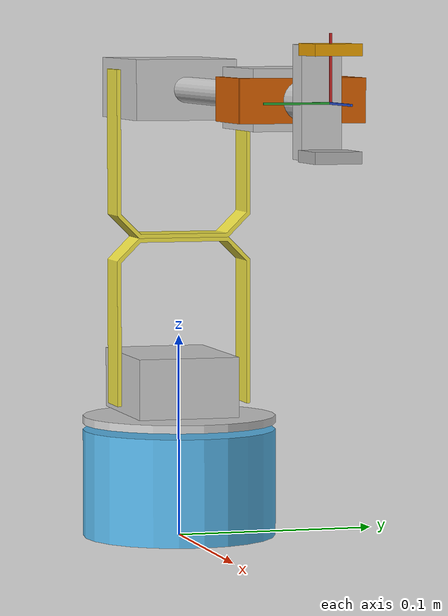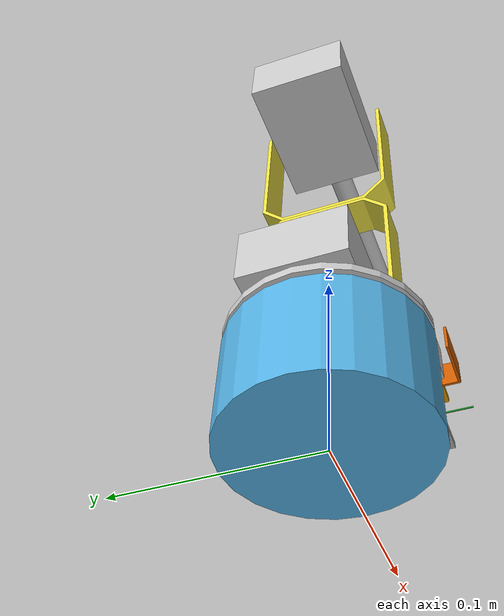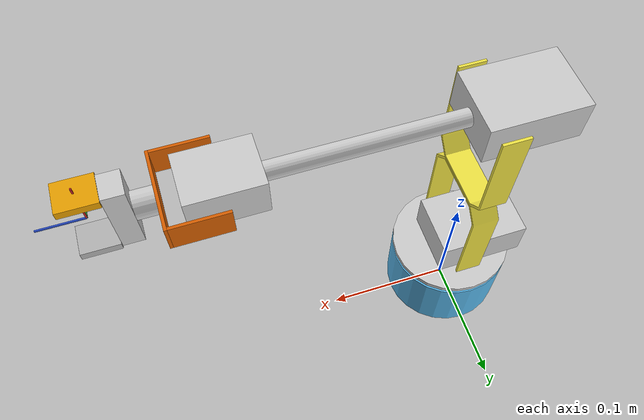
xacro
<?xml version="1.0"?>
<robot name="al5d" xmlns:xacro="http://ros.org/wiki/xacro">
    <xacro:include filename="$(find al5d_description)/urdf/transmissions.urdf.xacro"/>

    <xacro:property name="M_PI" value="3.14159"/>

    <xacro:property name="base_height" value="0.02" />
    <xacro:property name="base_radius" value="0.048" />
    <xacro:property name="upper_base_height" value="0.0702" />
    <xacro:property name="upper_arm_offset" value="0.006" />
    <xacro:property name="upper_arm_length" value="0.14605" />
    <xacro:property name="upper_arm_width" value="0.05" />
    <xacro:property name="lower_arm_length" value="0.187325" />
    <xacro:property name="lower_arm_width" value="0.035" />
    <xacro:property name="wrist_length" value="0.034" />
    <xacro:property name="gripper_length" value="${gripper_height + finger_length/2}" />
    <xacro:property name="wrist_width" value="0.025" />
    <xacro:property name="gripper_width" value="0.05" />
    <xacro:property name="gripper_height" value="0.021" />
    <xacro:property name="finger_length" value="0.04" />
    <xacro:property name="point" value="0.003" />

    <xacro:property name="axis_length" value="0.03" />
    <xacro:property name="axis_width" value="0.001" />

    <xacro:arg name="color" default="black" />

    <xacro:property name="inertia_block">
      <inertial>
        <mass value="0.3"/>
        <inertia ixx="0.001" ixy="0.0" ixz="0.0" iyy="0.001" iyz="0.0" izz="0.001"/>
      </inertial>
    </xacro:property>

    <link name="world"></link>
    <link name="base">
      <visual>
        <origin xyz="0 0 ${.0532/2}" rpy="0 0 0"/>
        <geometry>
          <cylinder length=".0532" radius="${base_radius}"/>
        </geometry>
      </visual>
      <collision>
        <origin xyz="0 0 ${.0532/2}" rpy="0 0 0"/>
        <geometry>
          <cylinder length=".0532" radius="${base_radius}"/>
        </geometry>
      </collision>
      <xacro:insert_block name="inertia_block" />
    </link>
    <link name="upper_base">
      <visual>
	      <origin xyz="0 0 .0582" rpy="0 0 0"/>
        <geometry>
          <cylinder length=".004" radius="${base_radius}"/>
        </geometry>
      </visual>
      <visual>
	      <origin xyz="-.01487 0 .0752" rpy="0 0 0"/>
        <geometry>
          <box size=".06985 .0508 .030"/>
        </geometry>
      </visual>
      <collision>
	      <origin xyz="0 0 .0582" rpy="0 0 0"/>
        <geometry>
          <cylinder length=".004" radius="${base_radius}"/>
        </geometry>
      </collision>
      <collision>
	      <origin xyz="-.01487 0 .0752" rpy="0 0 0"/>
        <geometry>
          <box size=".06985 .0508 .030"/>
        </geometry>
      </collision>
      <xacro:insert_block name="inertia_block" />
    </link>
    <link name="upper_arm">
      <visual>
        <geometry>
          <mesh filename="package://al5d_description/mesh/upper_arm/UpperArm - Bracket-1.STL"/>
        </geometry>
      </visual>
      <visual>
        <geometry>
          <mesh filename="package://al5d_description/mesh/upper_arm/UpperArm - Bracket-2.STL"/>
        </geometry>
      </visual>
      <collision>
        <origin xyz="${upper_arm_length/2} 0 0" rpy="0 0 0"/>
        <geometry>
          <box size=".02 .020 .068"/>
        </geometry>
      </collision>
      <collision>
        <origin xyz="${upper_arm_length/2} 0 .033" rpy="0 0 0"/>
        <geometry>
          <box size=".166 .020 .002"/>
        </geometry>
      </collision>
      <collision>
        <origin xyz="${upper_arm_length/2} 0 -.033" rpy="0 0 0"/>
        <geometry>
          <box size=".166 .020 .002"/>
        </geometry>
      </collision>
      <xacro:insert_block name="inertia_block" />
    </link>
    <link name="lower_arm">
      <visual>
        <origin xyz="${lower_arm_length/2} 0 0" rpy="0 ${3.14158/2} 0"/>
        <geometry>
          <cylinder length="${lower_arm_length}" radius=".00635"/>
        </geometry>
      </visual>
      <visual>
        <origin xyz="-.01982 0 0" rpy="0 0 0"/>
        <geometry>
          <box size=".06985 .030 .0508"/>
        </geometry>
      </visual>
      <visual>
        <origin xyz=".1759 0 0" rpy="0 0 0"/>
        <geometry>
          <box size=".0508 .0279 .0381"/>
        </geometry>
      </visual>

      <collision>
        <origin xyz="${lower_arm_length/2} 0 0" rpy="0 ${3.14158/2} 0"/>
        <geometry>
          <cylinder length="${lower_arm_length}" radius=".00635"/>
        </geometry>
      </collision>
      <collision>
        <origin xyz="-.01982 0 0" rpy="0 0 0"/>
        <geometry>
          <box size=".06985 .030 .0508"/>
        </geometry>
      </collision>
      <collision>
        <origin xyz=".1759 0 0" rpy="0 0 0"/>
        <geometry>
          <box size=".0508 .0279 .0381"/>
        </geometry>
      </collision>

      <xacro:insert_block name="inertia_block" />
    </link>
    <link name="wrist">
      <visual>
        <origin xyz=".026 0 0" rpy="0 0 0"/>
        <geometry>
          <box size=".002 .020 .05788"/>
        </geometry>
      </visual>
      <visual>
        <origin xyz="${.025-.0377/2} 0 ${.05788/2-.001}" rpy="0 0 0"/>
        <geometry>
          <box size="${.0377} .020 .002"/>
        </geometry>
      </visual>
      <visual>
        <origin xyz="${.025-.0377/2} 0 ${-.05788/2+.001}" rpy="0 0 0"/>
        <geometry>
          <box size="${.0377} .020 .002"/>
        </geometry>
      </visual>
      <collision>
        <origin xyz=".026 0 0" rpy="0 0 0"/>
        <geometry>
          <box size=".002 .020 .05788"/>
        </geometry>
      </collision>
      <collision>
        <origin xyz="${.025-.0377/2} 0 ${.05788/2-.001}" rpy="0 0 0"/>
        <geometry>
          <box size="${.0377} .020 .002"/>
        </geometry>
      </collision>
      <collision>
        <origin xyz="${.025-.0377/2} 0 ${-.05788/2+.001}" rpy="0 0 0"/>
        <geometry>
          <box size="${.0377} .020 .002"/>
        </geometry>
      </collision>
      <xacro:insert_block name="inertia_block" />
    </link>
    <link name="gripper_base">
      <visual>
        <origin xyz=".014 0 0" rpy="0 0 0"/>
        <geometry>
          <box size=".014 .018 .05"/>
        </geometry>
      </visual>
      <visual>
        <origin xyz="0 0 0" rpy="0 ${3.14159/2} 0"/>
        <geometry>
          <cylinder length=".014" radius=".009"/>
        </geometry>
      </visual>
      <collision>
        <origin xyz=".014 0 0" rpy="0 0 0"/>
        <geometry>
          <box size=".014 .018 .05"/>
        </geometry>
      </collision>
      <collision>
        <origin xyz="0 0 0" rpy="0 ${3.14159/2} 0"/>
        <geometry>
          <!-- shorter to avoid numerical issues -->
          <cylinder length=".013" radius=".009"/>
        </geometry>
      </collision>
      <xacro:insert_block name="inertia_block" />
    </link>
    <link name="gripper_rightfinger">
      <visual>
        <origin xyz="${gripper_width/4} 0 0" rpy="0 0 0"/>
        <geometry>
          <box size="${gripper_width/2} ${gripper_height} ${gripper_height/4}"/>
        </geometry>
      </visual>
      <collision>
        <origin xyz="${gripper_width/4} 0 0" rpy="0 0 0"/>
        <geometry>
          <box size="${gripper_width/2} ${gripper_height} ${gripper_height/4}"/>
        </geometry>
        <surface>
          <friction>
            <ode>
              <mu>1.0</mu>
              <mu2>1.0</mu2>
            </ode>
          </friction>
        </surface>
      </collision>
      <inertial>
        <mass value="0.05"/>
        <inertia ixx="0.0001" ixy="0.0" ixz="0.0" iyy="0.0001" iyz="0.0" izz="0.0001"/>
      </inertial>
    </link>
    <link name="gripper_leftfinger">
      <visual>
        <origin xyz="${gripper_width/4} 0 0" rpy="0 0 0"/>
        <geometry>
          <box size="${gripper_width/2} ${gripper_height} ${gripper_height/4}"/>
        </geometry>
      </visual>
      <collision>
        <origin xyz="${gripper_width/4} 0 0" rpy="0 0 0"/>
        <geometry>
          <box size="${gripper_width/2} ${gripper_height} ${gripper_height/4}"/>
        </geometry>
        <surface>
          <friction>
            <ode>
              <mu>0.7</mu>
              <mu2>0.7</mu2>
            </ode>
          </friction>
        </surface>
      </collision>
      <inertial>
        <mass value="0.05"/>
        <inertia ixx="0.0001" ixy="0.0" ixz="0.0" iyy="0.0001" iyz="0.0" izz="0.0001"/>
      </inertial>
    </link>
    <link name="end"></link>
    <link name="xaxis">
      <visual>
        <origin xyz="${axis_length/2} 0 0" rpy="0 0 0"/>
        <geometry>
          <box size="${axis_length} ${axis_width} ${axis_width}"/>
        </geometry>
      </visual>
    </link>
    <link name="yaxis">
      <visual>
        <origin xyz="0 ${axis_length/2} 0" rpy="0 0 0"/>
        <geometry>
          <box size="${axis_width} ${axis_length} ${axis_width}"/>
        </geometry>
      </visual>
    </link>
    <link name="zaxis">
      <visual>
        <origin xyz="0 0 ${axis_length/2}" rpy="0 0 0"/>
        <geometry>
          <box size="${axis_width} ${axis_width} ${axis_length}"/>
        </geometry>
      </visual>
    </link>

    <!-- joints -->
    <joint name="base_joint" type="fixed">
      <origin xyz="0 0 0" rpy="0 0 0"/>
      <parent link="world"/>
      <child link="base"/>
    </joint>
    <joint name="base_rotate" type="revolute">
      <origin xyz="0 0 0" rpy="0 0 0"/>
      <parent link="base"/>
      <child link="upper_base"/>
      <axis xyz="0 0 1"/>
      <limit lower="-1.4" upper="1.4" effort=".5" velocity="3.67"/>
    </joint>
    <joint name="shoulder_tilt" type="revolute">
      <origin xyz="0 0 ${upper_arm_offset + upper_base_height}" rpy="${M_PI/2} -${M_PI/2} 0 "/>
      <parent link="upper_base"/>
      <child link="upper_arm"/>
      <axis xyz="0 0 -1"/>
      <limit lower="-1.2" upper="1.4" effort="3" velocity="3.32"/>
    </joint>
    <joint name="elbow_tilt" type="revolute">
      <origin xyz="${upper_arm_length} 0 0" rpy="0 0 -${M_PI/2}" />
      <parent link="upper_arm"/>
      <child link="lower_arm"/>
      <axis xyz="0 0 -1"/>
      <limit lower="-1.8" upper="1.7" effort="2" velocity="3.67"/>
    </joint>
    <joint name="wrist_tilt" type="revolute">
      <origin xyz="${lower_arm_length} 0 0" rpy="0 0 0"/>
      <parent link="lower_arm"/>
      <child link="wrist"/>
      <axis xyz="0 0 -1"/>
      <limit lower="-1.9" upper="1.7" effort="1" velocity="6.98"/>
    </joint>
    <joint name="wrist_rotate" type="revolute">
      <origin xyz="${wrist_length} 0 0" rpy="${M_PI/2} 0 0"/>
      <parent link="wrist"/>
      <child link="gripper_base"/>
      <axis xyz="1 0 0"/>
      <limit lower="-2" upper="1.5" effort="1" velocity="6.98"/>
    </joint>
    <joint name="open_gripperright" type="prismatic">
      <origin xyz="${gripper_height} 0 0.023" rpy="0 0 0"/>
      <origin xyz="${gripper_height} 0 0" rpy="0 0 0"/>
      <parent link="gripper_base"/>
      <child link="gripper_rightfinger"/>
      <axis xyz="0 0 1"/>
      <limit lower="-0.03" upper="0.0" effort="100" velocity="6.98"/>
    </joint>
    <joint name="open_gripperleft" type="prismatic">
      <origin xyz="${gripper_height} 0 -0.023" rpy="0 0 0"/>
      <parent link="gripper_base"/>
      <child link="gripper_leftfinger"/>
      <axis xyz="0 0 1"/>
      <limit lower="0" upper="0.03" effort="100" velocity="6.98"/>
    </joint>
    <joint name="end" type="fixed">
      <origin xyz="${wrist_length} 0 0" rpy="0 ${M_PI/2} 0"/>
      <parent link="gripper_base"/>
      <child link="end"/>
    </joint>
    <joint name="axis1" type="fixed">
      <origin xyz="0 0 0" rpy="0 0 0"/>
      <parent link="end"/>
      <child link="xaxis"/>
    </joint>
    <joint name="axis2" type="fixed">
      <origin xyz="0 0 0" rpy="0 0 0"/>
      <parent link="end"/>
      <child link="yaxis"/>
    </joint>
    <joint name="axis3" type="fixed">
      <origin xyz="0 0 0" rpy="0 0 0"/>
      <parent link="end"/>
      <child link="zaxis"/>
    </joint>

  <gazebo>
    <plugin name="gazebo_ros_control" filename="libgazebo_ros_control.so">
      <robotSimType>gazebo_ros_control/DefaultRobotHWSim</robotSimType>
    </plugin>
  </gazebo>

  <xacro:include filename="touch.xacro" />

  <xacro:macro name="colorize">
    <visual>
      <material>
        <ambient>$(arg color)</ambient>
        <diffuse>$(arg color)</diffuse>
        <specular>$(arg color)</specular>
        <emissive>0 0 0 0</emissive>
      </material>
    </visual>
  </xacro:macro>

 <!-- TO GET NAMES OF COLLISION GEOMETRY: -->
 <!-- rosrun xacro xacro al5d_cad.xacro > temp.urdf -->
 <!-- gz sdf -p temp.urdf > temp.sdf -->
 <!-- Check names in temp.sdf -->

  <gazebo reference="base">
    <xacro:colorize />
    <self_collide>1</self_collide>
    <xacro:touch frame="base" collision_geometry="base_collision"/>
  </gazebo>
  <gazebo reference="upper_base">
    <material>Gazebo/LightGrey</material>
    <self_collide>1</self_collide>
    <xacro:touch frame="upper_base" collision_geometry="upper_base_collision"/>
    <xacro:touch frame="upper_base" collision_geometry="upper_base_collision_1"/>
  </gazebo>
  <gazebo reference="upper_arm">
    <xacro:colorize />
    <self_collide>1</self_collide>
    <xacro:touch frame="upper_arm" collision_geometry="upper_arm_collision"/>
    <xacro:touch frame="upper_arm" collision_geometry="upper_arm_collision_1"/>
    <xacro:touch frame="upper_arm" collision_geometry="upper_arm_collision_2"/>
  </gazebo>
  <gazebo reference="lower_arm">
    <material>Gazebo/LightGrey</material>
    <self_collide>1</self_collide>
    <xacro:touch frame="lower_arm" collision_geometry="lower_arm_collision"/>
    <xacro:touch frame="lower_arm" collision_geometry="lower_arm_collision_1"/>
    <xacro:touch frame="lower_arm" collision_geometry="lower_arm_collision_2"/>
  </gazebo>
  <gazebo reference="wrist">
    <xacro:colorize />
    <self_collide>1</self_collide>
    <xacro:touch frame="wrist" collision_geometry="wrist_collision"/>
    <xacro:touch frame="wrist" collision_geometry="wrist_collision_1"/>
    <xacro:touch frame="wrist" collision_geometry="wrist_collision_2"/>
  </gazebo>
  <gazebo reference="gripper_base">
    <material>Gazebo/LightGrey</material>
    <xacro:touch frame="gripper_base" collision_geometry="gripper_base_collision"/>
    <xacro:touch frame="gripper_base" collision_geometry="gripper_base_collision_1"/>
  </gazebo>
  <gazebo reference="gripper_leftfinger">
    <xacro:colorize />
    <self_collide>1</self_collide>
    <turnGravityOff>true</turnGravityOff>
    <xacro:touch frame="gripper_leftfinger" collision_geometry="gripper_leftfinger_collision"/>
  </gazebo>
  <gazebo reference="gripper_rightfinger">
    <xacro:colorize />
    <self_collide>1</self_collide>
    <turnGravityOff>true</turnGravityOff>
    <xacro:touch frame="gripper_rightfinger" collision_geometry="gripper_rightfinger_collision"/>
  </gazebo>
  <gazebo reference="end">
  </gazebo>
  <gazebo reference="xaxis">
    <material>Gazebo/RedTransparentOverlay</material>
  </gazebo>
  <gazebo reference="yaxis">
    <material>Gazebo/GreenTransparentOverlay</material>
  </gazebo>
  <gazebo reference="zaxis">
    <material>Gazebo/BlueTransparentOverlay</material>
  </gazebo>

</robot>
